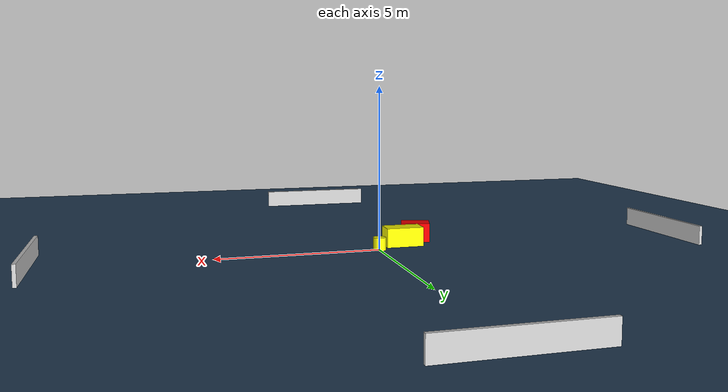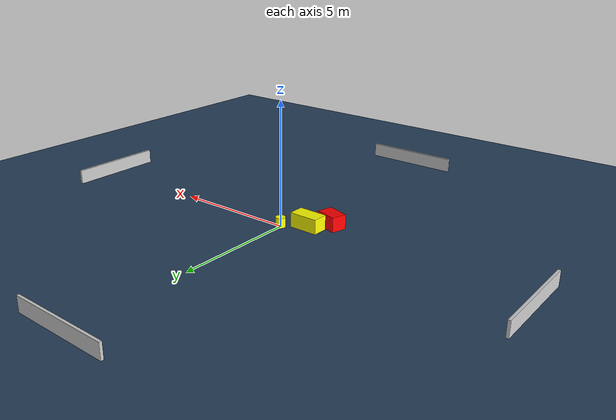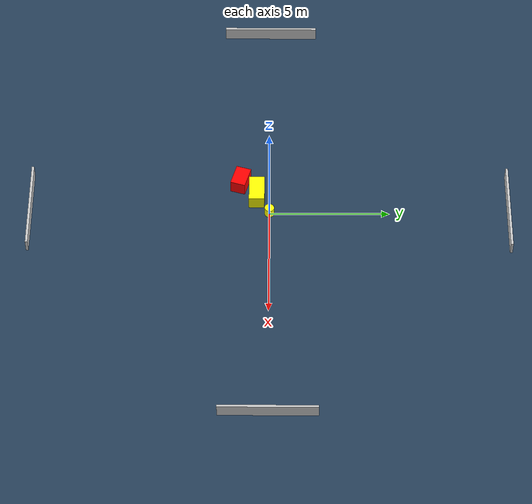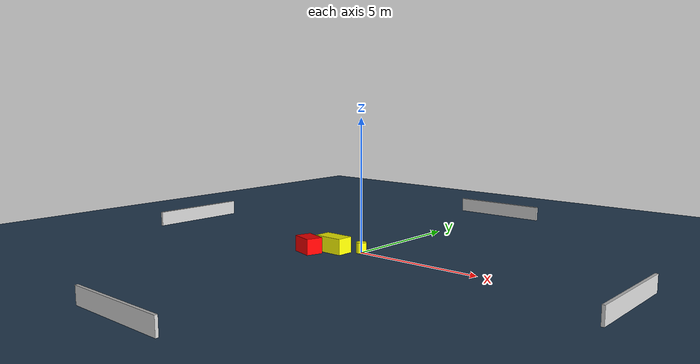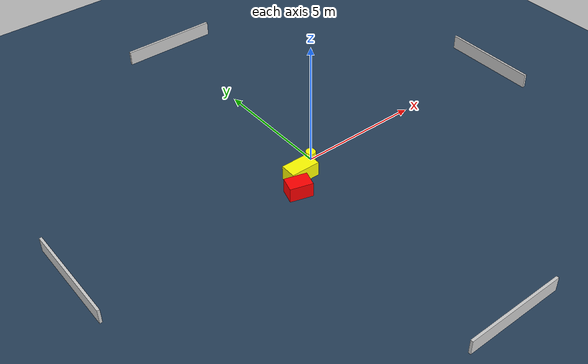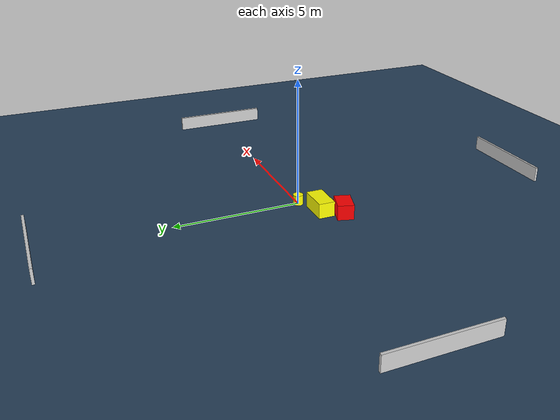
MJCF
<?xml version="1.0" ?>
<mujoco model="generated_environment">
  <option timestep="0.01" integrator="RK4" cone="elliptic"/>
  <default>
    <geom density="1"/>
  </default>
  <asset>
    <texture builtin="gradient" height="3072" name="skybox" rgb1="0.3 0.5 0.7" rgb2="0 0 0" type="skybox" width="512"/>
    <texture builtin="checker" height="300" name="groundplane" rgb1="0.2 0.3 0.4" rgb2="0.1 0.2 0.3" type="2d" width="300"/>
    <material name="groundplane" reflectance="0.2" texrepeat="5 5" texture="groundplane"/>
  </asset>
  <worldbody>
    <light dir="0 0 -1" directional="true" pos="0 0 1.5"/>
    <geom condim="3" friction="0.5 0.005 0.001" material="groundplane" name="floor" pos="0 0 0" size="0 0 0.05" type="plane"/>
    <body name="walls">
      <geom name="wall_1" condim="4" pos="-10.0 0.0 0.3" rgba="0.800000011920929 0.800000011920929 0.800000011920929 1.0" size="0.05 2.0 0.3" type="box"/>
      <geom name="wall_2" condim="4" pos="10.0 0.0 0.3" rgba="0.800000011920929 0.800000011920929 0.800000011920929 1.0" size="0.05 2.0 0.3" type="box"/>
      <geom name="wall_3" condim="4" pos="0.0 -10.0 0.3" rgba="0.800000011920929 0.800000011920929 0.800000011920929 1.0" size="2.0 0.05 0.3" type="box"/>
      <geom name="wall_4" condim="4" pos="0.0 10.0 0.3" rgba="0.800000011920929 0.800000011920929 0.800000011920929 1.0" size="2.0 0.05 0.3" type="box"/>
    </body>
    <body name="robot">
      <joint name="joint_x" type="slide" pos="0 0 0" axis="1 0 0"/>
      <joint name="joint_y" type="slide" pos="0 0 0" axis="0 1 0"/>
      <geom name="robot" type="cylinder" pos="0.0 0.0 0.2" size="0.2 0.2 0.0" mass="5.0" friction="1.0 0.005 0.0001" condim="4" rgba="1.0 1.0 0.0 1.0"/>
    </body>
    <body name="obstacle_1_movable">
      <geom name="obstacle_1_movable" condim="4" pos="-0.9175101534971405 -0.535991709806703 0.3" euler="0 0 269.57896563469086" friction="0.0 0.005 0.001" rgba="1.0 1.0 0.0 1.0" size="0.3237631917814714 0.5923963439211 0.3" type="box" mass="0.1"/>
      <joint type="free"/>
    </body>
    <body name="obstacle_2_static">
      <geom name="obstacle_2_static" condim="4" pos="-1.5542601572689645 -1.2159725718079324 0.3" euler="0 0 253.65286230396148" friction="0.0 0.005 0.001" rgba="1.0 0.0 0.0 1.0" size="0.31489683928237605 0.4528215859270439 0.3" type="box"/>
    </body>
  </worldbody>
  <actuator>
    <motor name="actuator_x" joint="joint_x" gear="1" ctrlrange="-1 1"/>
    <motor name="actuator_y" joint="joint_y" gear="1" ctrlrange="-1 1"/>
  </actuator>
</mujoco>
